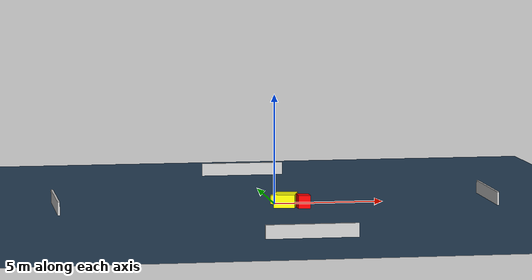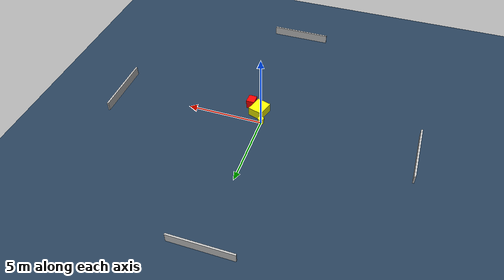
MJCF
<?xml version="1.0" ?>
<mujoco model="generated_environment">
  <option timestep="0.01" integrator="RK4" cone="elliptic"/>
  <default>
    <geom density="1"/>
  </default>
  <asset>
    <texture builtin="gradient" height="3072" name="skybox" rgb1="0.3 0.5 0.7" rgb2="0 0 0" type="skybox" width="512"/>
    <texture builtin="checker" height="300" name="groundplane" rgb1="0.2 0.3 0.4" rgb2="0.1 0.2 0.3" type="2d" width="300"/>
    <material name="groundplane" reflectance="0.2" texrepeat="5 5" texture="groundplane"/>
  </asset>
  <worldbody>
    <light dir="0 0 -1" directional="true" pos="0 0 1.5"/>
    <geom condim="3" friction="0.5 0.005 0.001" material="groundplane" name="floor" pos="0 0 0" size="0 0 0.05" type="plane"/>
    <body name="walls">
      <geom name="wall_1" condim="4" pos="-10.0 0.0 0.3" rgba="0.800000011920929 0.800000011920929 0.800000011920929 1.0" size="0.05 2.0 0.3" type="box"/>
      <geom name="wall_2" condim="4" pos="10.0 0.0 0.3" rgba="0.800000011920929 0.800000011920929 0.800000011920929 1.0" size="0.05 2.0 0.3" type="box"/>
      <geom name="wall_3" condim="4" pos="0.0 -10.0 0.3" rgba="0.800000011920929 0.800000011920929 0.800000011920929 1.0" size="2.0 0.05 0.3" type="box"/>
      <geom name="wall_4" condim="4" pos="0.0 10.0 0.3" rgba="0.800000011920929 0.800000011920929 0.800000011920929 1.0" size="2.0 0.05 0.3" type="box"/>
    </body>
    <body name="robot">
      <joint name="joint_x" type="slide" pos="0 0 0" axis="1 0 0"/>
      <joint name="joint_y" type="slide" pos="0 0 0" axis="0 1 0"/>
      <geom name="robot" type="cylinder" pos="0.0 0.0 0.2" size="0.2 0.2 0.0" mass="5.0" friction="1.0 0.005 0.0001" condim="4" rgba="1.0 1.0 0.0 1.0"/>
    </body>
    <body name="obstacle_1_movable">
      <geom name="obstacle_1_movable" condim="4" pos="0.37626709916082296 -0.8790591364256588 0.3" euler="0 0 73.59090163215387" friction="0.0 0.005 0.001" rgba="1.0 1.0 0.0 1.0" size="0.5589041012796889 0.47658742486862765 0.3" type="box" mass="0.1"/>
      <joint type="free"/>
    </body>
    <body name="obstacle_2_static">
      <geom name="obstacle_2_static" condim="4" pos="1.0958142170160063 -1.4014948943880041 0.3" euler="0 0 179.59848544273493" friction="0.0 0.005 0.001" rgba="1.0 0.0 0.0 1.0" size="0.2752304231013839 0.3173622627878685 0.3" type="box"/>
    </body>
  </worldbody>
  <actuator>
    <motor name="actuator_x" joint="joint_x" gear="1" ctrlrange="-1 1"/>
    <motor name="actuator_y" joint="joint_y" gear="1" ctrlrange="-1 1"/>
  </actuator>
</mujoco>
